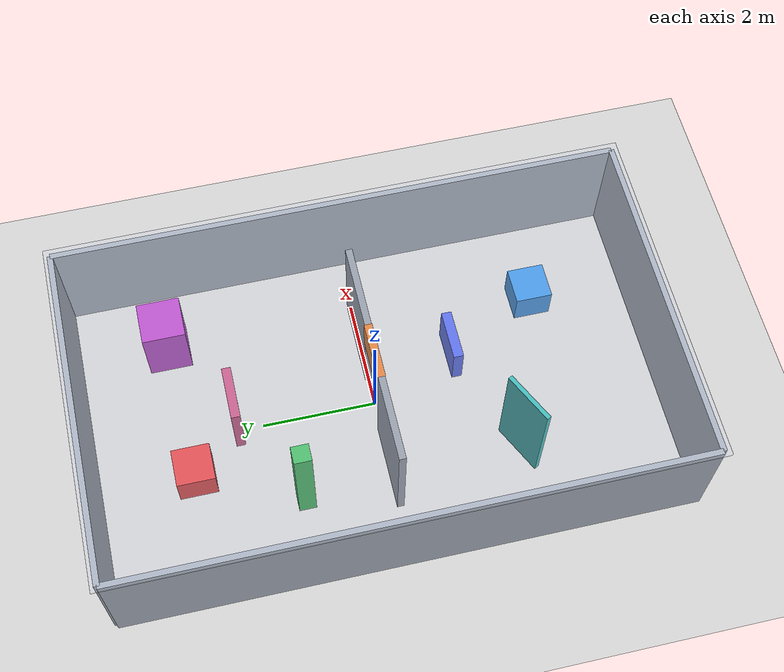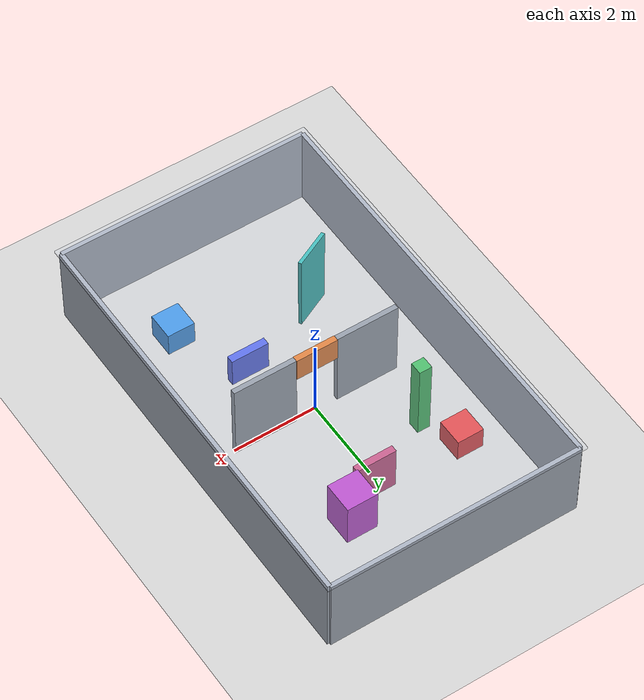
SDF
<sdf version="1.8">
 <world name="crazyflie_layered_obstacle_test_6x10">
  <plugin filename="gz-sim-physics-system" name="gz::sim::systems::Physics"/>
  <plugin filename="gz-sim-sensors-system" name="gz::sim::systems::Sensors">
   <render_engine>ogre2</render_engine>
  </plugin>
  <plugin filename="gz-sim-scene-broadcaster-system" name="gz::sim::systems::SceneBroadcaster"/>
  <plugin filename="gz-sim-user-commands-system" name="gz::sim::systems::UserCommands"/>
  <light name="sun" type="directional">
   <pose>0 0 10 0 0 0</pose>
   <diffuse>0.85 0.85 0.85 1</diffuse>
   <specular>0.2 0.2 0.2 1</specular>
   <attenuation>
    <range>1000</range>
    <constant>0.9</constant>
    <linear>0.01</linear>
    <quadratic>0.001</quadratic>
   </attenuation>
   <direction>-0.5 0.2 -0.9</direction>
  </light>
  <model name="ground_plane">
   <static>true</static>
   <link name="link">
    <collision name="collision">
     <geometry><plane><normal>0 0 1</normal><size>8 12</size></plane></geometry>
    </collision>
    <visual name="visual">
     <geometry><plane><normal>0 0 1</normal><size>8 12</size></plane></geometry>
     <material>
      <ambient>0.82 0.82 0.82 1</ambient>
      <diffuse>0.82 0.82 0.82 1</diffuse>
      <specular>0.08 0.08 0.08 1</specular>
     </material>
    </visual>
   </link>
  </model>
  <model name="ceiling_2m">
   <static>true</static>
   <pose>0 0 2.025 0 0 0</pose>
   <link name="link">
    <collision name="collision"><geometry><box><size>6.2 10.2 0.05</size></box></geometry></collision>
    <visual name="visual">
     <geometry><box><size>6.2 10.2 0.05</size></box></geometry>
     <material><ambient>0.78 0.82 0.9 0.18</ambient><diffuse>0.78 0.82 0.9 0.18</diffuse></material>
     <transparency>0.72</transparency>
     <cast_shadows>false</cast_shadows>
    </visual>
   </link>
  </model>
  <model name="wall_north">
   <static>true</static>
   <pose>0 5.0 1.0 0 0 0</pose>
   <link name="link">
    <collision name="collision"><geometry><box><size>6.0 0.1 2.0</size></box></geometry></collision>
    <visual name="visual">
     <geometry><box><size>6.0 0.1 2.0</size></box></geometry>
     <material><ambient>0.65 0.68 0.73 1</ambient><diffuse>0.65 0.68 0.73 1</diffuse></material>
    </visual>
   </link>
  </model>
  <model name="wall_south">
   <static>true</static>
   <pose>0 -5.0 1.0 0 0 0</pose>
   <link name="link">
    <collision name="collision"><geometry><box><size>6.0 0.1 2.0</size></box></geometry></collision>
    <visual name="visual">
     <geometry><box><size>6.0 0.1 2.0</size></box></geometry>
     <material><ambient>0.65 0.68 0.73 1</ambient><diffuse>0.65 0.68 0.73 1</diffuse></material>
    </visual>
   </link>
  </model>
  <model name="wall_west">
   <static>true</static>
   <pose>-3.0 0 1.0 0 0 0</pose>
   <link name="link">
    <collision name="collision"><geometry><box><size>0.1 10.0 2.0</size></box></geometry></collision>
    <visual name="visual">
     <geometry><box><size>0.1 10.0 2.0</size></box></geometry>
     <material><ambient>0.65 0.68 0.73 1</ambient><diffuse>0.65 0.68 0.73 1</diffuse></material>
    </visual>
   </link>
  </model>
  <model name="wall_east">
   <static>true</static>
   <pose>3.0 0 1.0 0 0 0</pose>
   <link name="link">
    <collision name="collision"><geometry><box><size>0.1 10.0 2.0</size></box></geometry></collision>
    <visual name="visual">
     <geometry><box><size>0.1 10.0 2.0</size></box></geometry>
     <material><ambient>0.65 0.68 0.73 1</ambient><diffuse>0.65 0.68 0.73 1</diffuse></material>
    </visual>
   </link>
  </model>
  <model name="door_partition_left">
   <static>true</static>
   <pose>-1.25 0 1.0 0 0 0</pose>
   <link name="link">
    <collision name="collision"><geometry><box><size>1.5 0.12 2.0</size></box></geometry></collision>
    <visual name="visual">
     <geometry><box><size>1.5 0.12 2.0</size></box></geometry>
     <material><ambient>0.55 0.58 0.62 1</ambient><diffuse>0.55 0.58 0.62 1</diffuse></material>
    </visual>
   </link>
  </model>
  <model name="door_partition_right">
   <static>true</static>
   <pose>1.25 0 1.0 0 0 0</pose>
   <link name="link">
    <collision name="collision"><geometry><box><size>1.5 0.12 2.0</size></box></geometry></collision>
    <visual name="visual">
     <geometry><box><size>1.5 0.12 2.0</size></box></geometry>
     <material><ambient>0.55 0.58 0.62 1</ambient><diffuse>0.55 0.58 0.62 1</diffuse></material>
    </visual>
   </link>
  </model>
  <model name="door_lintel_blocks_upper_layer">
   <static>true</static>
   <pose>0 0 1.7 0 0 0</pose>
   <link name="link">
    <collision name="collision"><geometry><box><size>1.0 0.14 0.6</size></box></geometry></collision>
    <visual name="visual">
     <geometry><box><size>1.0 0.14 0.6</size></box></geometry>
     <material><ambient>0.9 0.45 0.12 1</ambient><diffuse>0.9 0.45 0.12 1</diffuse></material>
    </visual>
   </link>
  </model>
  <model name="floor_obstacle_blocks_low_layer_only">
   <static>true</static>
   <pose>1.45 -3.2 0.3 0 0 0</pose>
   <link name="link">
    <collision name="collision"><geometry><box><size>0.65 0.65 0.60</size></box></geometry></collision>
    <visual name="visual">
     <geometry><box><size>0.65 0.65 0.60</size></box></geometry>
     <material><ambient>0.18 0.55 0.9 1</ambient><diffuse>0.18 0.55 0.9 1</diffuse></material>
    </visual>
   </link>
  </model>
  <model name="ceiling_drop_blocks_middle_and_upper_layers">
   <static>true</static>
   <pose>1.35 3.35 1.45 0 0 0</pose>
   <link name="link">
    <collision name="collision"><geometry><box><size>0.72 0.72 1.1</size></box></geometry></collision>
    <visual name="visual">
     <geometry><box><size>0.72 0.72 1.1</size></box></geometry>
     <material><ambient>0.72 0.22 0.78 1</ambient><diffuse>0.72 0.22 0.78 1</diffuse></material>
    </visual>
   </link>
  </model>
  <model name="hanging_obstacle_blocks_upper_layer_only">
   <static>true</static>
   <pose>-1.35 3.25 1.725 0 0 0</pose>
   <link name="link">
    <collision name="collision"><geometry><box><size>0.62 0.62 0.55</size></box></geometry></collision>
    <visual name="visual">
     <geometry><box><size>0.62 0.62 0.55</size></box></geometry>
     <material><ambient>0.9 0.2 0.2 1</ambient><diffuse>0.9 0.2 0.2 1</diffuse></material>
    </visual>
   </link>
  </model>
  <model name="local_low_ceiling_patch">
   <static>true</static>
   <pose>1.35 1.35 1.775 0 0 0</pose>
   <link name="link">
    <collision name="collision"><geometry><box><size>0.90 0.80 0.45</size></box></geometry></collision>
    <visual name="visual">
     <geometry><box><size>0.90 0.80 0.45</size></box></geometry>
     <material><ambient>0.92 0.72 0.15 0.8</ambient><diffuse>0.92 0.72 0.15 0.8</diffuse></material>
     <transparency>0.15</transparency>
    </visual>
   </link>
  </model>
  <model name="full_height_column">
   <static>true</static>
   <pose>-1.55 1.55 1.0 0 0 0</pose>
   <link name="link">
    <collision name="collision"><geometry><box><size>0.30 0.30 2.0</size></box></geometry></collision>
    <visual name="visual">
     <geometry><box><size>0.30 0.30 2.0</size></box></geometry>
     <material><ambient>0.2 0.72 0.32 1</ambient><diffuse>0.2 0.72 0.32 1</diffuse></material>
    </visual>
   </link>
  </model>
  <model name="thin_full_height_wall">
   <static>true</static>
   <pose>-1.4 -2.25 1.0 0 0 0.45</pose>
   <link name="link">
    <collision name="collision"><geometry><box><size>0.95 0.08 2.0</size></box></geometry></collision>
    <visual name="visual">
     <geometry><box><size>0.95 0.08 2.0</size></box></geometry>
     <material><ambient>0.15 0.72 0.70 1</ambient><diffuse>0.15 0.72 0.70 1</diffuse></material>
    </visual>
   </link>
  </model>
  <model name="low_beam_requires_overflight">
   <static>true</static>
   <pose>0.65 -1.55 0.38 0 0 0</pose>
   <link name="link">
    <collision name="collision"><geometry><box><size>0.90 0.18 0.76</size></box></geometry></collision>
    <visual name="visual">
     <geometry><box><size>0.90 0.18 0.76</size></box></geometry>
     <material><ambient>0.28 0.36 0.92 1</ambient><diffuse>0.28 0.36 0.92 1</diffuse></material>
    </visual>
   </link>
  </model>
  <model name="floor_obstacle_blocks_low_and_middle_layers">
   <static>true</static>
   <pose>0.2 2.45 0.575 0 0 0</pose>
   <link name="link">
    <collision name="collision"><geometry><box><size>0.95 0.16 1.15</size></box></geometry></collision>
    <visual name="visual">
     <geometry><box><size>0.95 0.16 1.15</size></box></geometry>
     <material><ambient>0.78 0.28 0.48 1</ambient><diffuse>0.78 0.28 0.48 1</diffuse></material>
    </visual>
   </link>
  </model>
 </world>
</sdf>
